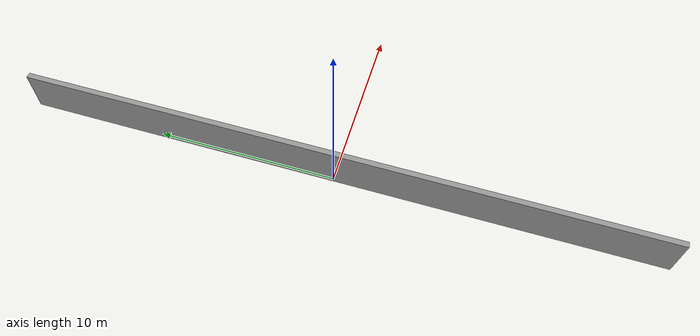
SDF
<?xml version='1.0'?>
<sdf version='1.6'>
  <model name='wall_35_03'>
    <pose frame=''>0 0 0 0 -0 0</pose>
    <link name='Wall_2'>
      <collision name='Wall_2_Collision'>
        <geometry>
          <box>
            <size>35.3 0.3 2.5</size>
          </box>
        </geometry>
        <pose frame=''>0 0 1.25 0 -0 0</pose>
      </collision>
      <visual name='Wall_2_Visual'>
        <pose frame=''>0 0 1.25 0 -0 0</pose>
        <geometry>
          <box>
            <size>35.3 0.3 2.5</size>
          </box>
        </geometry>
        <material>
          <script>
            <uri>file://media/materials/scripts/gazebo.material</uri>
            <name>Gazebo/Grey</name>
          </script>
          <ambient>1 1 1 1</ambient>
        </material>
        <meta>
          <layer>0</layer>
        </meta>
      </visual>
      <pose frame=''>0 0 0 0 -0 1.5708</pose>
    </link>
    <static>1</static>
  </model>
</sdf>
